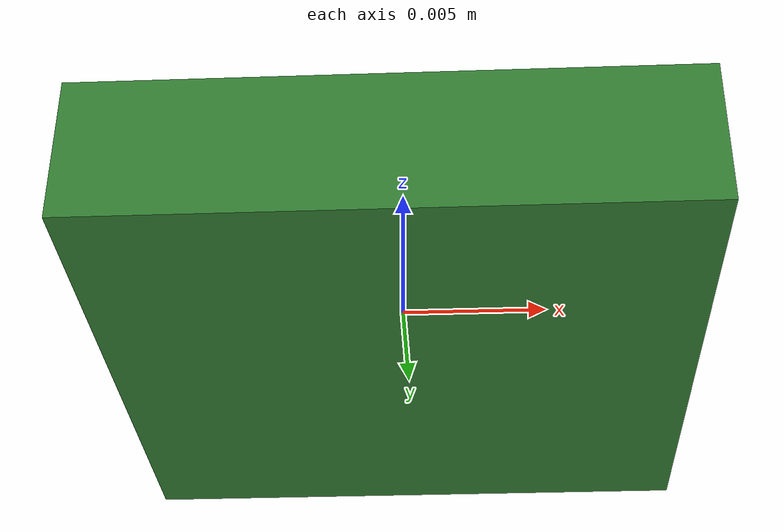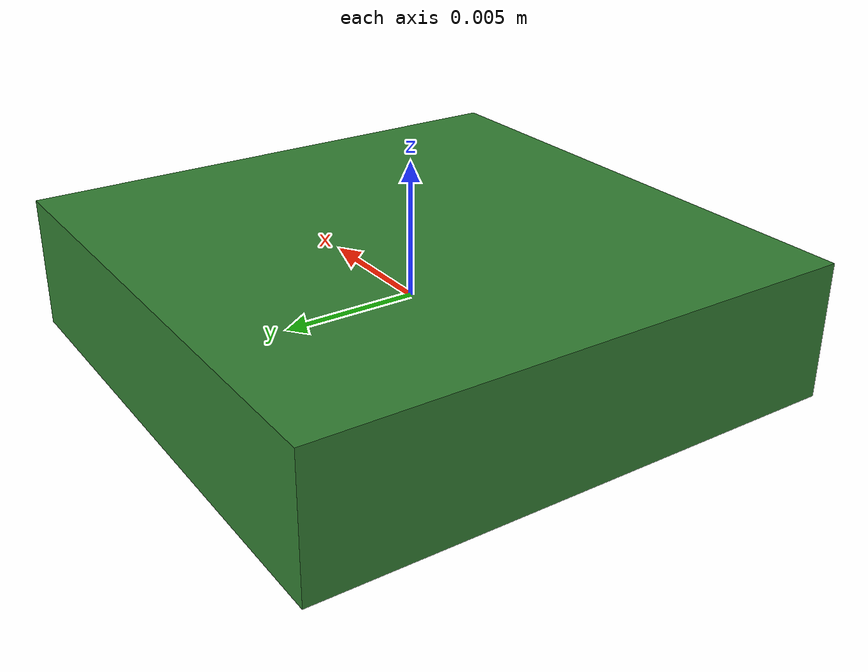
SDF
<?xml version="1.0"?>
<sdf version="1.9">
  <model name="imu_model">
    <static>false</static>

    <link name="imu_link">
      <!-- Visual representation of IMU chip -->
      <visual name="imu_visual">
        <geometry>
          <box>
            <size>0.020 0.020 0.005</size>
          </box>
        </geometry>
        <material>
          <ambient>0.1 0.3 0.1 1</ambient>
          <diffuse>0.2 0.5 0.2 1</diffuse>
        </material>
      </visual>

      <collision name="imu_collision">
        <geometry>
          <box>
            <size>0.020 0.020 0.005</size>
          </box>
        </geometry>
      </collision>

      <inertial>
        <mass>0.005</mass>
        <inertia>
          <ixx>0.0000001</ixx>
          <iyy>0.0000001</iyy>
          <izz>0.0000001</izz>
        </inertia>
      </inertial>

      <!-- IMU Sensor -->
      <sensor name="imu" type="imu">
        <pose>0 0 0 0 0 0</pose>

        <!-- Update rate (Hz) - typical IMU: 100-400 Hz -->
        <update_rate>200</update_rate>

        <topic>/humanoid/imu</topic>

        <always_on>true</always_on>
        <visualize>false</visualize>

        <imu>
          <!-- ==================== Gyroscope ==================== -->
          <!-- Measures angular velocity (rad/s) -->
          <angular_velocity>
            <x>
              <noise type="gaussian">
                <!-- Zero mean -->
                <mean>0.0</mean>
                <!-- Noise density: ~0.1 deg/s = 0.00175 rad/s -->
                <stddev>0.00175</stddev>
                <!-- Bias (constant offset) -->
                <bias_mean>0.0001</bias_mean>
                <!-- Bias instability -->
                <bias_stddev>0.00001</bias_stddev>
                <!-- Dynamic bias (random walk coefficient) -->
                <dynamic_bias_stddev>0.00001</dynamic_bias_stddev>
                <dynamic_bias_correlation_time>300</dynamic_bias_correlation_time>
              </noise>
            </x>
            <y>
              <noise type="gaussian">
                <mean>0.0</mean>
                <stddev>0.00175</stddev>
                <bias_mean>0.0001</bias_mean>
                <bias_stddev>0.00001</bias_stddev>
                <dynamic_bias_stddev>0.00001</dynamic_bias_stddev>
                <dynamic_bias_correlation_time>300</dynamic_bias_correlation_time>
              </noise>
            </y>
            <z>
              <noise type="gaussian">
                <mean>0.0</mean>
                <stddev>0.00175</stddev>
                <bias_mean>0.0001</bias_mean>
                <bias_stddev>0.00001</bias_stddev>
                <dynamic_bias_stddev>0.00001</dynamic_bias_stddev>
                <dynamic_bias_correlation_time>300</dynamic_bias_correlation_time>
              </noise>
            </z>
          </angular_velocity>

          <!-- ==================== Accelerometer ==================== -->
          <!-- Measures linear acceleration (m/s^2) -->
          <linear_acceleration>
            <x>
              <noise type="gaussian">
                <!-- Zero mean -->
                <mean>0.0</mean>
                <!-- Noise density: ~150 μg/√Hz ≈ 0.015 m/s² -->
                <stddev>0.015</stddev>
                <!-- Bias (constant offset) -->
                <bias_mean>0.001</bias_mean>
                <!-- Bias instability -->
                <bias_stddev>0.0001</bias_stddev>
                <!-- Dynamic bias -->
                <dynamic_bias_stddev>0.0001</dynamic_bias_stddev>
                <dynamic_bias_correlation_time>300</dynamic_bias_correlation_time>
              </noise>
            </x>
            <y>
              <noise type="gaussian">
                <mean>0.0</mean>
                <stddev>0.015</stddev>
                <bias_mean>0.001</bias_mean>
                <bias_stddev>0.0001</bias_stddev>
                <dynamic_bias_stddev>0.0001</dynamic_bias_stddev>
                <dynamic_bias_correlation_time>300</dynamic_bias_correlation_time>
              </noise>
            </y>
            <z>
              <noise type="gaussian">
                <mean>0.0</mean>
                <stddev>0.015</stddev>
                <bias_mean>0.001</bias_mean>
                <bias_stddev>0.0001</bias_stddev>
                <dynamic_bias_stddev>0.0001</dynamic_bias_stddev>
                <dynamic_bias_correlation_time>300</dynamic_bias_correlation_time>
              </noise>
            </z>
          </linear_acceleration>

          <!-- Enable orientation output (computed from accel/gyro) -->
          <enable_orientation>true</enable_orientation>

          <!-- Orientation noise (if using built-in fusion) -->
          <orientation_reference_frame>
            <localization>ENU</localization>
            <custom_rpy>0 0 0</custom_rpy>
            <grav_dir_x>0</grav_dir_x>
            <grav_dir_y>0</grav_dir_y>
            <grav_dir_z>-1</grav_dir_z>
          </orientation_reference_frame>
        </imu>
      </sensor>
    </link>
  </model>
</sdf>
